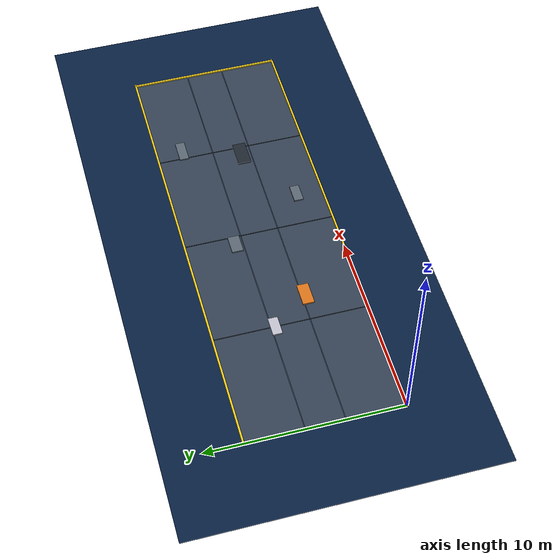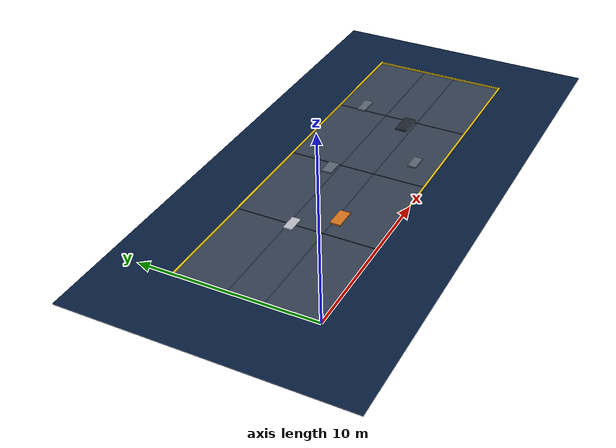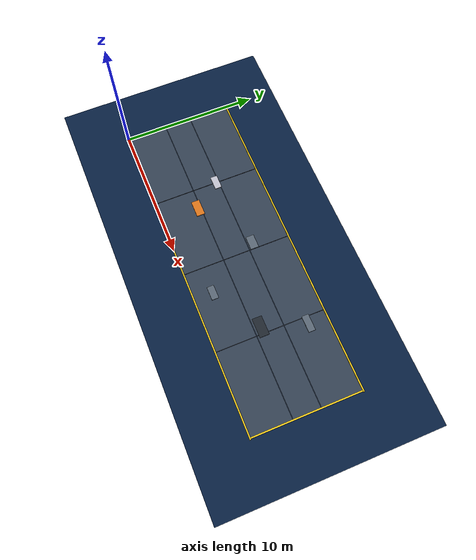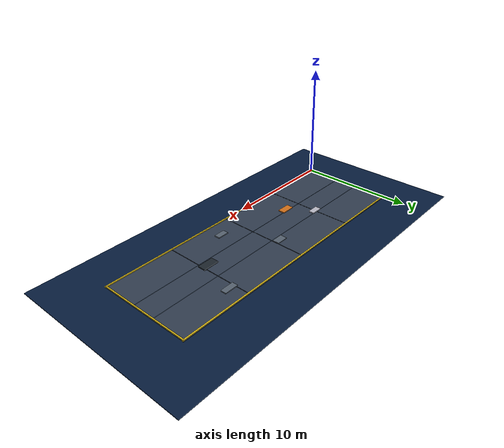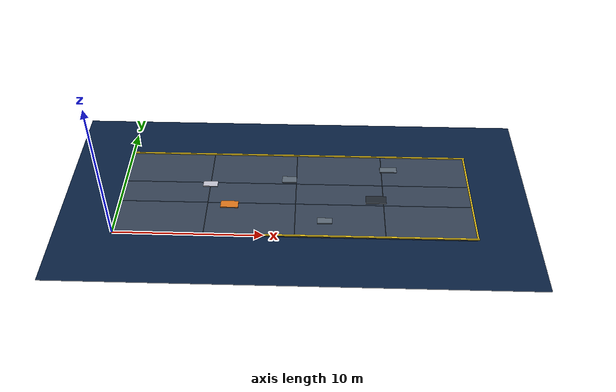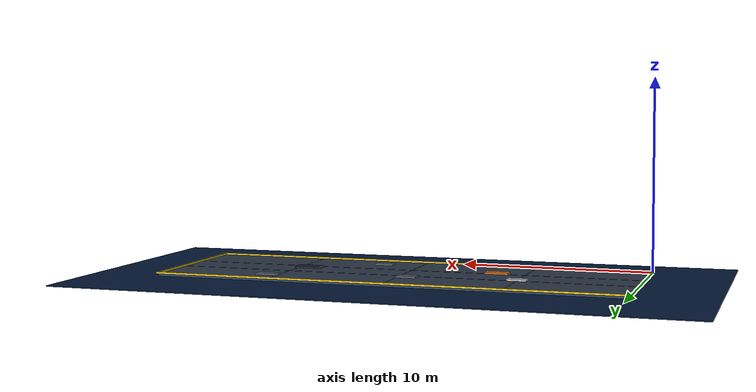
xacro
<?xml version="1.0"?>
<robot xmlns:xacro="http://www.ros.org/wiki/xacro" name="ship_hull">

  <!-- Materials -->
  <material name="hull_marine_steel">
    <color rgba="0.20 0.25 0.32 1.0"/>
  </material>
  <material name="ocean_water_plane">
    <color rgba="0.03 0.12 0.25 0.92"/>
  </material>
  <material name="hull_safety_coaming">
    <color rgba="0.95 0.80 0.10 1.0"/>
  </material>
  <material name="hull_weld_seam">
    <color rgba="0.14 0.17 0.21 1.0"/>
  </material>
  <material name="obstacle_hatch_material">
    <color rgba="0.85 0.45 0.10 1.0"/>
  </material>
  <material name="obstacle_panel_material">
    <color rgba="0.35 0.40 0.45 1.0"/>
  </material>
  <material name="obstacle_anode_material">
    <color rgba="0.75 0.75 0.80 1.0"/>
  </material>
  <material name="obstacle_grate_material">
    <color rgba="0.12 0.15 0.18 1.0"/>
  </material>
  <material name="lane_guide_line">
    <color rgba="0.30 0.50 0.70 0.25"/>
  </material>

  <!-- World Frame / Origin -->
  <link name="hull_world"/>

  <!-- Deep Ocean Plane behind the hull (32m x 16m) -->
  <link name="ocean_water_link">
    <visual>
      <origin xyz="12.0 4.0 -0.25" rpy="0 0 0"/>
      <geometry>
        <box size="32.0 16.0 0.05"/>
      </geometry>
      <material name="ocean_water_plane"/>
    </visual>
  </link>
  <joint name="ocean_water_joint" type="fixed">
    <parent link="hull_world"/>
    <child link="ocean_water_link"/>
    <origin xyz="0 0 0" rpy="0 0 0"/>
  </joint>

  <!-- Main Dominant Ship Hull Plate (24.0m x 8.0m surface) -->
  <link name="hull_surface">
    <visual>
      <origin xyz="12.0 4.0 -0.06" rpy="0 0 0"/>
      <geometry>
        <box size="24.0 8.0 0.12"/>
      </geometry>
      <material name="hull_marine_steel"/>
    </visual>
    <collision>
      <origin xyz="12.0 4.0 -0.06" rpy="0 0 0"/>
      <geometry>
        <box size="24.0 8.0 0.12"/>
      </geometry>
    </collision>
    <inertial>
      <mass value="75000.0"/>
      <inertia ixx="40000.0" ixy="0" ixz="0" iyy="360000.0" iyz="0" izz="400000.0"/>
    </inertial>
  </link>
  <joint name="hull_surface_joint" type="fixed">
    <parent link="hull_world"/>
    <child link="hull_surface"/>
    <origin xyz="0 0 0" rpy="0 0 0"/>
  </joint>

  <!-- Safety Perimeter Coaming / Rub Rails -->
  <link name="border_bottom">
    <visual>
      <origin xyz="12.0 0.0 0.04" rpy="0 0 0"/>
      <geometry>
        <box size="24.2 0.10 0.08"/>
      </geometry>
      <material name="hull_safety_coaming"/>
    </visual>
  </link>
  <joint name="border_bottom_joint" type="fixed">
    <parent link="hull_surface"/>
    <child link="border_bottom"/>
    <origin xyz="0 0 0" rpy="0 0 0"/>
  </joint>

  <link name="border_top">
    <visual>
      <origin xyz="12.0 8.0 0.04" rpy="0 0 0"/>
      <geometry>
        <box size="24.2 0.10 0.08"/>
      </geometry>
      <material name="hull_safety_coaming"/>
    </visual>
  </link>
  <joint name="border_top_joint" type="fixed">
    <parent link="hull_surface"/>
    <child link="border_top"/>
    <origin xyz="0 0 0" rpy="0 0 0"/>
  </joint>

  <link name="border_left">
    <visual>
      <origin xyz="0.0 4.0 0.04" rpy="0 0 0"/>
      <geometry>
        <box size="0.10 8.0 0.08"/>
      </geometry>
      <material name="hull_safety_coaming"/>
    </visual>
  </link>
  <joint name="border_left_joint" type="fixed">
    <parent link="hull_surface"/>
    <child link="border_left"/>
    <origin xyz="0 0 0" rpy="0 0 0"/>
  </joint>

  <link name="border_right">
    <visual>
      <origin xyz="24.0 4.0 0.04" rpy="0 0 0"/>
      <geometry>
        <box size="0.10 8.0 0.08"/>
      </geometry>
      <material name="hull_safety_coaming"/>
    </visual>
  </link>
  <joint name="border_right_joint" type="fixed">
    <parent link="hull_surface"/>
    <child link="border_right"/>
    <origin xyz="0 0 0" rpy="0 0 0"/>
  </joint>

  <!-- Structural Plate Welds & Inspection Lane Dividers -->
  <link name="hull_lanes_weld_grid">
    <!-- Lane Divider 1-2 (Y = 3.0) -->
    <visual>
      <origin xyz="12.0 3.0 0.005" rpy="0 0 0"/>
      <geometry>
        <box size="23.8 0.04 0.01"/>
      </geometry>
      <material name="lane_guide_line"/>
    </visual>
    <!-- Lane Divider 2-3 (Y = 5.0) -->
    <visual>
      <origin xyz="12.0 5.0 0.005" rpy="0 0 0"/>
      <geometry>
        <box size="23.8 0.04 0.01"/>
      </geometry>
      <material name="lane_guide_line"/>
    </visual>
    <!-- Vertical Frame Welds -->
    <visual>
      <origin xyz="6.0 4.0 0.005" rpy="0 0 0"/>
      <geometry>
        <box size="0.04 7.9 0.01"/>
      </geometry>
      <material name="hull_weld_seam"/>
    </visual>
    <visual>
      <origin xyz="12.0 4.0 0.005" rpy="0 0 0"/>
      <geometry>
        <box size="0.04 7.9 0.01"/>
      </geometry>
      <material name="hull_weld_seam"/>
    </visual>
    <visual>
      <origin xyz="18.0 4.0 0.005" rpy="0 0 0"/>
      <geometry>
        <box size="0.04 7.9 0.01"/>
      </geometry>
      <material name="hull_weld_seam"/>
    </visual>
  </link>
  <joint name="hull_lanes_joint" type="fixed">
    <parent link="hull_surface"/>
    <child link="hull_lanes_weld_grid"/>
    <origin xyz="0 0 0" rpy="0 0 0"/>
  </joint>

  <!-- Static Obstacles Attached to Hull Surface (Collision & Visual) -->
  <!-- Obstacle 1: Maintenance Hatch Alpha at (7.5, 2.8) -->
  <link name="obs_hatch_01">
    <visual>
      <origin xyz="7.5 2.8 0.04" rpy="0 0 0"/>
      <geometry>
        <box size="1.2 0.6 0.08"/>
      </geometry>
      <material name="obstacle_hatch_material"/>
    </visual>
    <collision>
      <origin xyz="7.5 2.8 0.04" rpy="0 0 0"/>
      <geometry>
        <box size="1.2 0.6 0.08"/>
      </geometry>
    </collision>
  </link>
  <joint name="obs_hatch_01_joint" type="fixed">
    <parent link="hull_surface"/>
    <child link="obs_hatch_01"/>
    <origin xyz="0 0 0" rpy="0 0 0"/>
  </joint>

  <!-- Obstacle 2: Equipment Panel Bravo at (14.0, 1.4) -->
  <link name="obs_panel_02">
    <visual>
      <origin xyz="14.0 1.4 0.04" rpy="0 0 0"/>
      <geometry>
        <box size="1.0 0.5 0.08"/>
      </geometry>
      <material name="obstacle_panel_material"/>
    </visual>
    <collision>
      <origin xyz="14.0 1.4 0.04" rpy="0 0 0"/>
      <geometry>
        <box size="1.0 0.5 0.08"/>
      </geometry>
    </collision>
  </link>
  <joint name="obs_panel_02_joint" type="fixed">
    <parent link="hull_surface"/>
    <child link="obs_panel_02"/>
    <origin xyz="0 0 0" rpy="0 0 0"/>
  </joint>

  <!-- Obstacle 3: Sacrificial Anode Array at (6.0, 4.8) -->
  <link name="obs_anode_03">
    <visual>
      <origin xyz="6.0 4.8 0.04" rpy="0 0 0"/>
      <geometry>
        <box size="1.0 0.5 0.08"/>
      </geometry>
      <material name="obstacle_anode_material"/>
    </visual>
    <collision>
      <origin xyz="6.0 4.8 0.04" rpy="0 0 0"/>
      <geometry>
        <box size="1.0 0.5 0.08"/>
      </geometry>
    </collision>
  </link>
  <joint name="obs_anode_03_joint" type="fixed">
    <parent link="hull_surface"/>
    <child link="obs_anode_03"/>
    <origin xyz="0 0 0" rpy="0 0 0"/>
  </joint>

  <!-- Obstacle 4: Sea Chest Intake Grate at (17.5, 3.5) -->
  <link name="obs_seachest_04">
    <visual>
      <origin xyz="17.5 3.5 0.04" rpy="0 0 0"/>
      <geometry>
        <box size="1.4 0.7 0.08"/>
      </geometry>
      <material name="obstacle_grate_material"/>
    </visual>
    <collision>
      <origin xyz="17.5 3.5 0.04" rpy="0 0 0"/>
      <geometry>
        <box size="1.4 0.7 0.08"/>
      </geometry>
    </collision>
  </link>
  <joint name="obs_seachest_04_joint" type="fixed">
    <parent link="hull_surface"/>
    <child link="obs_seachest_04"/>
    <origin xyz="0 0 0" rpy="0 0 0"/>
  </joint>

  <!-- Obstacle 5: Echo Sounder Transducer at (11.5, 5.4) -->
  <link name="obs_sonar_05">
    <visual>
      <origin xyz="11.5 5.4 0.04" rpy="0 0 0"/>
      <geometry>
        <box size="1.0 0.6 0.08"/>
      </geometry>
      <material name="obstacle_panel_material"/>
    </visual>
    <collision>
      <origin xyz="11.5 5.4 0.04" rpy="0 0 0"/>
      <geometry>
        <box size="1.0 0.6 0.08"/>
      </geometry>
    </collision>
  </link>
  <joint name="obs_sonar_05_joint" type="fixed">
    <parent link="hull_surface"/>
    <child link="obs_sonar_05"/>
    <origin xyz="0 0 0" rpy="0 0 0"/>
  </joint>

  <!-- Obstacle 6: Structural Doubler Plate at (18.5, 6.6) -->
  <link name="obs_plate_06">
    <visual>
      <origin xyz="18.5 6.6 0.04" rpy="0 0 0"/>
      <geometry>
        <box size="1.2 0.5 0.08"/>
      </geometry>
      <material name="obstacle_panel_material"/>
    </visual>
    <collision>
      <origin xyz="18.5 6.6 0.04" rpy="0 0 0"/>
      <geometry>
        <box size="1.2 0.5 0.08"/>
      </geometry>
    </collision>
  </link>
  <joint name="obs_plate_06_joint" type="fixed">
    <parent link="hull_surface"/>
    <child link="obs_plate_06"/>
    <origin xyz="0 0 0" rpy="0 0 0"/>
  </joint>

</robot>
